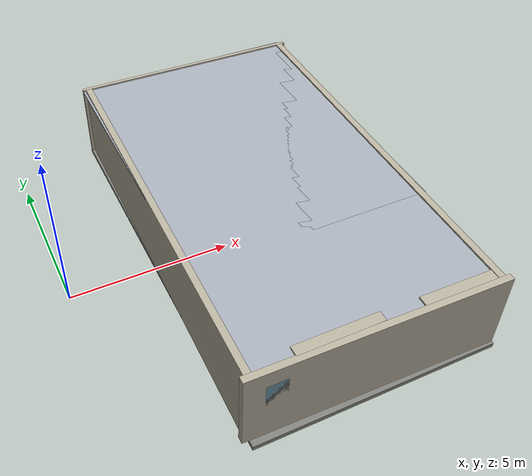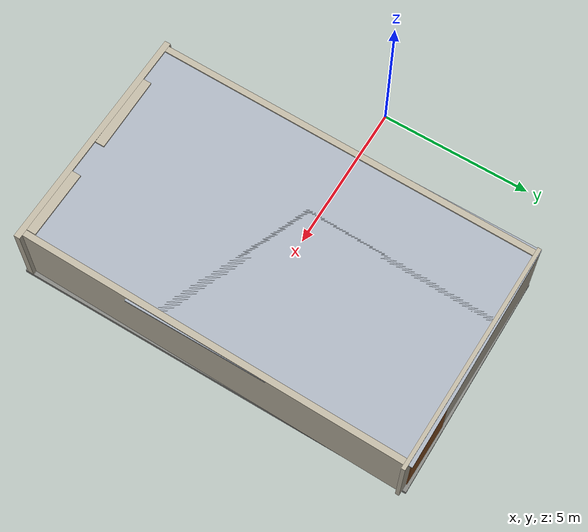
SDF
<?xml version="1.0"?>
<sdf version="1.10">
  <world name="deltaseek_hall_b_ablation_hall_b_ablation">
    <physics name="default_physics" type="ignored">
      <max_step_size>0.003</max_step_size>
      <real_time_factor>1.0</real_time_factor>
    </physics>
    <plugin filename="gz-sim-physics-system" name="gz::sim::systems::Physics" />
    <plugin filename="gz-sim-user-commands-system" name="gz::sim::systems::UserCommands" />
    <plugin filename="gz-sim-scene-broadcaster-system" name="gz::sim::systems::SceneBroadcaster" />
    <plugin filename="gz-sim-sensors-system" name="gz::sim::systems::Sensors">
      <render_engine>ogre2</render_engine>
    </plugin>
    <plugin filename="gz-sim-imu-system" name="gz::sim::systems::Imu" />
    <gravity>0 0 -9.81</gravity>
    <scene>
      <ambient>0.55 0.55 0.55 1</ambient>
      <background>0.78 0.84 0.92 1</background>
      <shadows>false</shadows>
    </scene>
    <light type="directional" name="sun">
      <cast_shadows>false</cast_shadows>
      <pose>0 0 10 0 0 0</pose>
      <diffuse>0.9 0.9 0.9 1</diffuse>
      <direction>-0.4 0.2 -0.9</direction>
    </light>
    <model name="ifc_05LeiFLbH7dBxLmOb3F9cv_9a50bce1">
      <static>true</static>
      <pose>8.891095 6.334841 1.0287 0 0 3.1273035</pose>
      <link name="link">
        <collision name="collision">
          <geometry>
            <box>
              <size>1.9812 0.174625 2.0574</size>
            </box>
          </geometry>
        </collision>
        <visual name="visual">
          <geometry>
            <box>
              <size>1.9812 0.174625 2.0574</size>
            </box>
          </geometry>
          <material>
            <ambient>0.55 0.32 0.14 1</ambient>
            <diffuse>0.55 0.32 0.14 1</diffuse>
          </material>
        </visual>
      </link>
    </model>
    <model name="ifc_0KvanlNQrCphrCb4tAxXpN_7b0e35a5">
      <static>true</static>
      <pose>2.796055 0.104399 1.275 0 0 -1.58651771</pose>
      <link name="link">
        <collision name="collision">
          <geometry>
            <box>
              <size>12.510271 0.2032 2.55</size>
            </box>
          </geometry>
        </collision>
        <visual name="visual">
          <geometry>
            <box>
              <size>12.510271 0.2032 2.55</size>
            </box>
          </geometry>
          <material>
            <ambient>0.72 0.69 0.62 1</ambient>
            <diffuse>0.72 0.69 0.62 1</diffuse>
          </material>
        </visual>
      </link>
    </model>
    <model name="ifc_0KvanlNQrCphrCb4tAxkBj_11e01c23">
      <static>true</static>
      <pose>9.968354 -0.003231 1.275 0 0 -1.58651771</pose>
      <link name="link">
        <collision name="collision">
          <geometry>
            <box>
              <size>12.520544 0.2032 2.55</size>
            </box>
          </geometry>
        </collision>
        <visual name="visual">
          <geometry>
            <box>
              <size>12.520544 0.2032 2.55</size>
            </box>
          </geometry>
          <material>
            <ambient>0.72 0.69 0.62 1</ambient>
            <diffuse>0.72 0.69 0.62 1</diffuse>
          </material>
        </visual>
      </link>
    </model>
    <model name="ifc_0KvanlNQrCphrCb4tAxkG7_09707822">
      <static>true</static>
      <pose>6.491373 6.369133 1.275 0 0 3.1273035</pose>
      <link name="link">
        <collision name="collision">
          <geometry>
            <box>
              <size>7.585712 0.123825 2.55</size>
            </box>
          </geometry>
        </collision>
        <visual name="visual">
          <geometry>
            <box>
              <size>7.585712 0.123825 2.55</size>
            </box>
          </geometry>
          <material>
            <ambient>0.72 0.69 0.62 1</ambient>
            <diffuse>0.72 0.69 0.62 1</diffuse>
          </material>
        </visual>
      </link>
    </model>
    <model name="ifc_0KvanlNQrCphrCb4tAxkvE_19b2a9a4">
      <static>true</static>
      <pose>5.176841 -6.049325 1.275 0 0 3.14159265</pose>
      <link name="link">
        <collision name="collision">
          <geometry>
            <box>
              <size>2.48285 0.3048 2.55</size>
            </box>
          </geometry>
        </collision>
        <visual name="visual">
          <geometry>
            <box>
              <size>2.48285 0.3048 2.55</size>
            </box>
          </geometry>
          <material>
            <ambient>0.72 0.69 0.62 1</ambient>
            <diffuse>0.72 0.69 0.62 1</diffuse>
          </material>
        </visual>
      </link>
    </model>
    <model name="ifc_0KvanlNQrCphrCb4tAxkzA_51982bcb">
      <static>true</static>
      <pose>8.653188 -6.097364 1.275 0 0 3.12587127</pose>
      <link name="link">
        <collision name="collision">
          <geometry>
            <box>
              <size>2.2098 0.3048 2.55</size>
            </box>
          </geometry>
        </collision>
        <visual name="visual">
          <geometry>
            <box>
              <size>2.2098 0.3048 2.55</size>
            </box>
          </geometry>
          <material>
            <ambient>0.72 0.69 0.62 1</ambient>
            <diffuse>0.72 0.69 0.62 1</diffuse>
          </material>
        </visual>
      </link>
    </model>
    <model name="ifc_1abtvTofT8EB1v01F0Dkt3_634e8941">
      <static>true</static>
      <pose>6.301211 -6.308232 1.275 0 0 -0.015721382</pose>
      <link name="link">
        <collision name="collision">
          <geometry>
            <box>
              <size>7.604241 0.2032 2.55</size>
            </box>
          </geometry>
        </collision>
        <visual name="visual">
          <geometry>
            <box>
              <size>7.604241 0.2032 2.55</size>
            </box>
          </geometry>
          <material>
            <ambient>0.72 0.69 0.62 1</ambient>
            <diffuse>0.72 0.69 0.62 1</diffuse>
          </material>
        </visual>
      </link>
    </model>
    <model name="ifc_1s7WttW8LF3wo3GFHzG4HD_4c2d617f">
      <static>true</static>
      <pose>3.407035 -6.262728 1.33985 0 0 3.12587127</pose>
      <link name="link">
        <collision name="collision">
          <geometry>
            <box>
              <size>0.6096 0.2032 1.3716</size>
            </box>
          </geometry>
        </collision>
        <visual name="visual">
          <geometry>
            <box>
              <size>0.6096 0.2032 1.3716</size>
            </box>
          </geometry>
          <material>
            <ambient>0.25 0.55 0.72 0.55</ambient>
            <diffuse>0.25 0.55 0.72 0.55</diffuse>
          </material>
        </visual>
      </link>
    </model>
    <model name="ifc_1s7WttW8LF3wo3GFHzG4IH_cc5592b3">
      <static>true</static>
      <pose>7.322898 -6.318793 1.15985 0 0 3.12587127</pose>
      <link name="link">
        <collision name="collision">
          <geometry>
            <box>
              <size>0.6096 0.2032 1.3716</size>
            </box>
          </geometry>
        </collision>
        <visual name="visual">
          <geometry>
            <box>
              <size>0.6096 0.2032 1.3716</size>
            </box>
          </geometry>
          <material>
            <ambient>0.25 0.55 0.72 0.55</ambient>
            <diffuse>0.25 0.55 0.72 0.55</diffuse>
          </material>
        </visual>
      </link>
    </model>
    <model name="ifc_1s7WttW8LF3wo3GFHzG7VQ_b5bff051">
      <static>true</static>
      <pose>6.4 -0.025 -0.0762 0 0 0</pose>
      <link name="link">
        <collision name="collision">
          <geometry>
            <box>
              <size>7.4 13.05 0.1524</size>
            </box>
          </geometry>
        </collision>
        <visual name="visual">
          <geometry>
            <box>
              <size>7.4 13.05 0.1524</size>
            </box>
          </geometry>
          <material>
            <ambient>0.5 0.5 0.48 1</ambient>
            <diffuse>0.5 0.5 0.48 1</diffuse>
          </material>
        </visual>
      </link>
    </model>
    <model name="ifc_2UiYIxdTHDMQxEBYlcrRAA_d255930a">
      <static>true</static>
      <pose>6.366227 0.062508 2.466975 0 0 0</pose>
      <link name="link">
        <collision name="collision">
          <geometry>
            <box>
              <size>7.197574 12.589517 0.05715</size>
            </box>
          </geometry>
        </collision>
        <visual name="visual">
          <geometry>
            <box>
              <size>7.197574 12.589517 0.05715</size>
            </box>
          </geometry>
          <material>
            <ambient>0.65 0.68 0.72 1</ambient>
            <diffuse>0.65 0.68 0.72 1</diffuse>
          </material>
        </visual>
      </link>
    </model>
    <model name="ifc_2twF3dYLP0A94p8cE1aniu_9a42863e">
      <static>true</static>
      <pose>6.4 1.899848 2.466975 0 0 0</pose>
      <link name="link">
        <collision name="collision">
          <geometry>
            <box>
              <size>7.4 9.200305 0.05715</size>
            </box>
          </geometry>
        </collision>
        <visual name="visual">
          <geometry>
            <box>
              <size>7.4 9.200305 0.05715</size>
            </box>
          </geometry>
          <material>
            <ambient>0.65 0.68 0.72 1</ambient>
            <diffuse>0.65 0.68 0.72 1</diffuse>
          </material>
        </visual>
      </link>
    </model>
    <model name="ifc_H1_rack_tote_2a9d536b">
      <static>true</static>
      <pose>9.4 1 2.33 0 0 0.35</pose>
      <link name="link">
        <collision name="collision">
          <geometry>
            <box>
              <size>0.5 0.45 0.16</size>
            </box>
          </geometry>
        </collision>
        <visual name="visual">
          <geometry>
            <box>
              <size>0.5 0.45 0.16</size>
            </box>
          </geometry>
          <material>
            <ambient>0.78 0.66 0.42 1</ambient>
            <diffuse>0.78 0.66 0.42 1</diffuse>
          </material>
        </visual>
      </link>
    </model>
    <model name="ifc_H2_cabinet_carton_75a288ad">
      <static>true</static>
      <pose>4.2 5.6 2.335 0 0 -0.42</pose>
      <link name="link">
        <collision name="collision">
          <geometry>
            <box>
              <size>0.45 0.4 0.17</size>
            </box>
          </geometry>
        </collision>
        <visual name="visual">
          <geometry>
            <box>
              <size>0.45 0.4 0.17</size>
            </box>
          </geometry>
          <material>
            <ambient>0.78 0.66 0.42 1</ambient>
            <diffuse>0.78 0.66 0.42 1</diffuse>
          </material>
        </visual>
      </link>
    </model>
    <model name="ifc_I2_standing_panel_3dfc8530">
      <static>true</static>
      <pose>7.8 -5.28 0.65 0 0 1.5551</pose>
      <link name="link">
        <collision name="collision">
          <geometry>
            <box>
              <size>1.1 0.05 1.3</size>
            </box>
          </geometry>
        </collision>
        <visual name="visual">
          <geometry>
            <box>
              <size>1.1 0.05 1.3</size>
            </box>
          </geometry>
          <material>
            <ambient>0.72 0.7 0.55 1</ambient>
            <diffuse>0.72 0.7 0.55 1</diffuse>
          </material>
        </visual>
      </link>
    </model>
    <model name="ifc_O1_crate_behind_stack_15feb63c">
      <static>true</static>
      <pose>5.2 -2.85 0.225 0 0 -0.31</pose>
      <link name="link">
        <collision name="collision">
          <geometry>
            <box>
              <size>0.5 0.5 0.45</size>
            </box>
          </geometry>
        </collision>
        <visual name="visual">
          <geometry>
            <box>
              <size>0.5 0.5 0.45</size>
            </box>
          </geometry>
          <material>
            <ambient>0.45 0.47 0.5 1</ambient>
            <diffuse>0.45 0.47 0.5 1</diffuse>
          </material>
        </visual>
      </link>
    </model>
    <model name="ifc_O2_drum_behind_rack_85ac9647">
      <static>true</static>
      <pose>9.4 2.75 0.475 0 0 0</pose>
      <link name="link">
        <collision name="collision">
          <geometry>
            <box>
              <size>0.55 0.55 0.95</size>
            </box>
          </geometry>
        </collision>
        <visual name="visual">
          <geometry>
            <box>
              <size>0.55 0.55 0.95</size>
            </box>
          </geometry>
          <material>
            <ambient>0.2 0.42 0.3 1</ambient>
            <diffuse>0.2 0.42 0.3 1</diffuse>
          </material>
        </visual>
      </link>
    </model>
    <model name="ifc_T1_pallet_stack_e22ef0e7">
      <static>true</static>
      <pose>5.2 -1.8 0.8 0 0 0.3</pose>
      <link name="link">
        <collision name="collision">
          <geometry>
            <box>
              <size>1.2 0.9 1.6</size>
            </box>
          </geometry>
        </collision>
        <visual name="visual">
          <geometry>
            <box>
              <size>1.2 0.9 1.6</size>
            </box>
          </geometry>
          <material>
            <ambient>0.62 0.36 0.14 1</ambient>
            <diffuse>0.62 0.36 0.14 1</diffuse>
          </material>
        </visual>
      </link>
    </model>
    <model name="ifc_T2_site_cabin_8bd5f68d">
      <static>true</static>
      <pose>8.3 -3.6 0.7 0 0 -0.2</pose>
      <link name="link">
        <collision name="collision">
          <geometry>
            <box>
              <size>1 0.8 1.4</size>
            </box>
          </geometry>
        </collision>
        <visual name="visual">
          <geometry>
            <box>
              <size>1 0.8 1.4</size>
            </box>
          </geometry>
          <material>
            <ambient>0.55 0.18 0.16 1</ambient>
            <diffuse>0.55 0.18 0.16 1</diffuse>
          </material>
        </visual>
      </link>
    </model>
    <model name="ifc_fitout_cabinet_b_808f2c2c">
      <static>true</static>
      <pose>4.2 5.6 1.125 0 0 -0.0157</pose>
      <link name="link">
        <collision name="collision">
          <geometry>
            <box>
              <size>1.8 0.6 2.25</size>
            </box>
          </geometry>
        </collision>
        <visual name="visual">
          <geometry>
            <box>
              <size>1.8 0.6 2.25</size>
            </box>
          </geometry>
          <material>
            <ambient>0.42 0.45 0.48 1</ambient>
            <diffuse>0.42 0.45 0.48 1</diffuse>
          </material>
        </visual>
      </link>
    </model>
    <model name="ifc_fitout_rack_a_f61f4bf9">
      <static>true</static>
      <pose>9.4 1 1.125 0 0 -0.0157</pose>
      <link name="link">
        <collision name="collision">
          <geometry>
            <box>
              <size>0.6 2.4 2.25</size>
            </box>
          </geometry>
        </collision>
        <visual name="visual">
          <geometry>
            <box>
              <size>0.6 2.4 2.25</size>
            </box>
          </geometry>
          <material>
            <ambient>0.42 0.45 0.48 1</ambient>
            <diffuse>0.42 0.45 0.48 1</diffuse>
          </material>
        </visual>
      </link>
    </model>
  </world>
</sdf>
